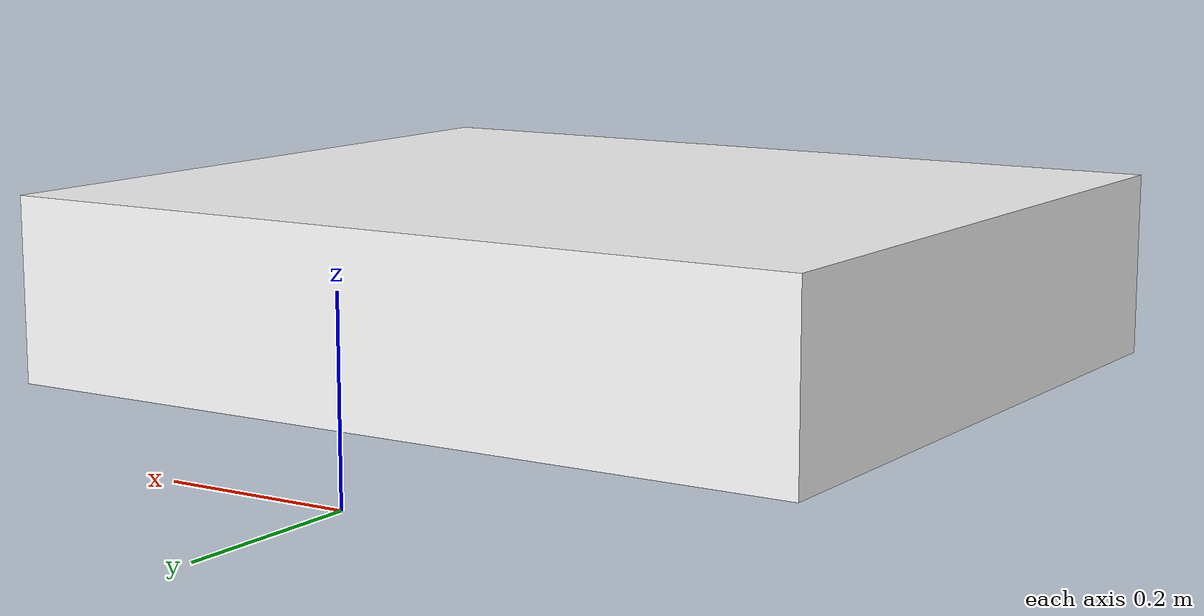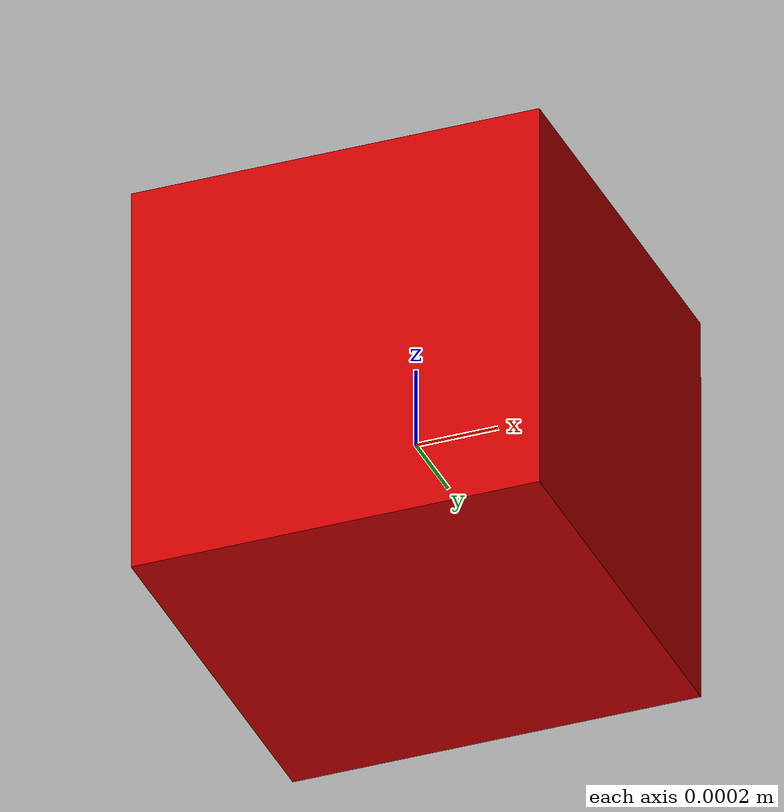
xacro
<?xml version="1.0"?>
<robot xmlns:xacro="http://www.ros.org/wiki/xacro"
 	xmlns:sensor="http://playerstage.sourceforge.net/gazebo/xmlschema/#sensor"
    	xmlns:controller="http://playerstage.sourceforge.net/gazebo/xmlschema/#controller"
    	xmlns:interface="http://playerstage.sourceforge.net/gazebo/xmlschema/#interface"
	name="bigbot">

	<!-- This only has base_footprint and baselink

	-->

	<!-- Defining the colors used in this robot -->
	<material name="Black">
	  <color rgba="0.0 0.0 0.0 1.0"/>
	</material>

	<material name="Red">
	  <color rgba="0.8 0.0 0.0 1.0"/>
	</material>

	<material name="White">
	  <color rgba="1.0 1.0 1.0 1.0"/>
	</material>

	<material name="Blue">
	  <color rgba="0.0 0.0 0.8 1.0"/>
	</material>

	<material name="Green">
	  <color rgba="0.0 1.0 0.0 1.0"/>
	</material>

	<!-- Defining parameters-->
	<xacro:property name="mass_base" value="24" />
	<xacro:property name="length_base" value="0.7001" />
	<xacro:property name="width_base" value="0.60325" />
	<xacro:property name="depth_base" value="0.1524" />
	<xacro:property name="wheel_base" value=" 0.5461" /> <!--23.75 outside to outside  - 1.75 width of wheel  -->

	<xacro:property name="length_wheel" value="0.0682625" />
	<xacro:property name="radius_wheel" value="0.085725" /> <!-- 6.75 in -->
	<xacro:property name="extend_wheel" value="0.0" /> <!-- to be added to collision for axile -->
 	<xacro:property name="M_PI_2" value="1.570796327" />
 	<xacro:property name="M_PI" value="3.1415926535897931" />
	<xacro:property name="radius_caster" value="0.0635" />

        <!-- Define a macro -->
	<xacro:macro name="default_inertial" params="mass">
               <inertial>
                       <mass value="${mass}" />
                       <inertia ixx="1.0" ixy="0.0" ixz="0.0"
                                iyy="1.0" iyz="0.0"
                                izz="1.0" />
               </inertial>
	</xacro:macro>

	<xacro:macro name="cylinder_inertial" params="m r h">
		<inertial>
			 <mass value="${m}" />
			<inertia  ixx="${m*(3*r*r+h*h)/12}" ixy = "0" ixz = "0"
	      		iyy="${m*(3*r*r+h*h)/12}" iyz = "0"
	      		izz="${m*r*r/2}" />
               </inertial>
	</xacro:macro>

	<!-- per https://en.wikipedia.org/wiki/List_of_moments_of_inertia
	  ixx = m/12(h * h  + d * d)
	  iyy = m/12(w * w  + d * d)
	  izz= m/12(w * w  + h * h)
	 -->

	<xacro:macro name="box_inertial" params="m w h d x">
		<inertial>
			 <mass value="${m}" />
			<inertia  ixx="${m*(h*h + d *d)/12}"
			ixy = "0" ixz = "0"
	      		iyy="${m*(w*w+d*d)/12}"
			iyz = "0"
	      		izz="${m*(h*h+w*w)/12}"
			/>

			<origin xyz="${x} 0 0"/>
               </inertial>
	</xacro:macro>

	<!-- base_footprint is a fictitious link(frame) that is on the ground right below base_link origin -->
	<link name="base_footprint">
   		<visual>
			<geometry>
      				<box size="0.001 0.001 0.001"/>
     			</geometry>
			<origin rpy="0 0 0" xyz="0 0 0"/>
			<material name="Red"/>
   		</visual>
		<xacro:default_inertial mass="0.0001"/>

 	</link>

	<gazebo reference="base_footprint">
		<material>Gazebo/Red</material>
		<turnGravityOff>false</turnGravityOff>
	</gazebo>

	<joint name="base_footprint_joint" type="fixed">
		<origin xyz="0 0 ${radius_wheel}" rpy="0 0 0" />
		<parent link="base_footprint" />
		<child link="base_link" />
	</joint>

	<link name="base_link">
   		<visual>
			<geometry>
      				<box size="${length_base} ${width_base} ${depth_base}"/>
     			</geometry>
			<origin xyz="-0.274 0 ${depth_base}" rpy="0 0 0" />
			<material name="White"/>
   		</visual>
		<collision>
			<geometry>
       				<box size="${length_base} ${width_base} ${depth_base}"/>
			</geometry>
			<origin rpy="0 0 0" xyz="-0.22 0 0"/>
		</collision>

		<xacro:box_inertial m="${mass_base}" w="${width_base}" h="${length_base}" d="${depth_base}"  x="-0.22" />
 	</link>

	<gazebo reference="base_link">
	    <material>Gazebo/White</material>
	    <turnGravityOff>false</turnGravityOff>
	</gazebo>

</robot>
